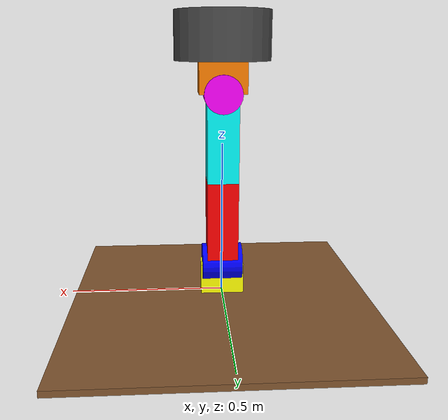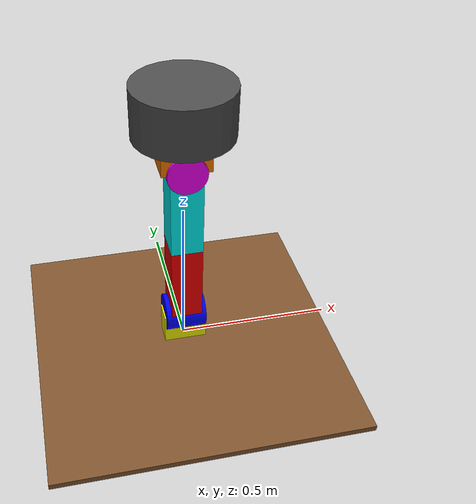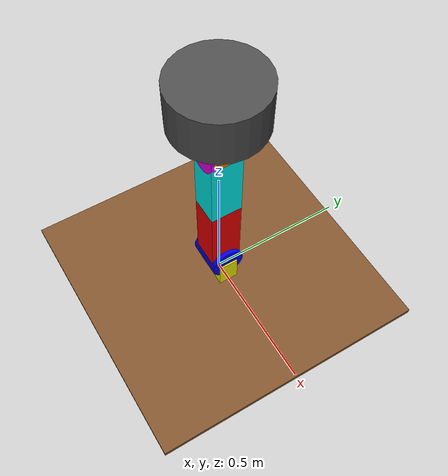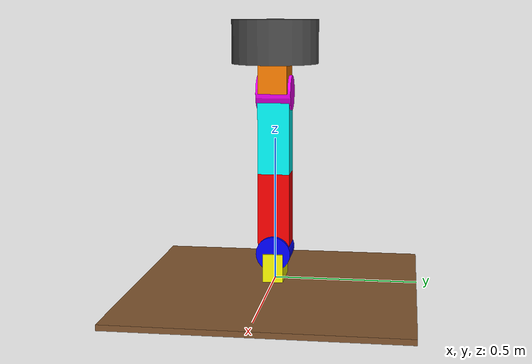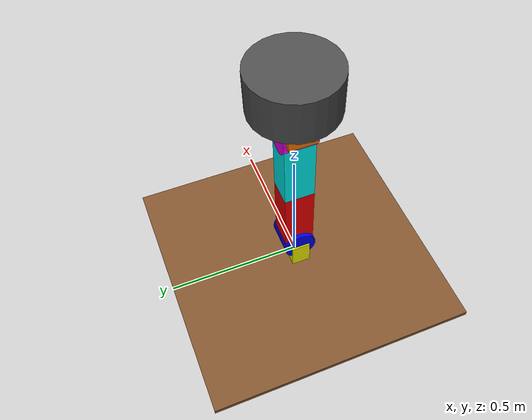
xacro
<?xml version="1.0"?>

<robot name="6dof_huboq" xmlns:xacro="http://ros.org/wiki/xacro">

  <!-- Include materials -->

    <material name="Black">
        <color rgba="0.0 0.0 0.0 1.0"/>
    </material>

    <material name="Red">
        <color rgba="0.8 0.0 0.0 1.0"/>
    </material>

    <material name="White">
        <color rgba="1.0 1.0 1.0 1.0"/>
    </material>

  <xacro:property name="deg_to_rad" value="0.01745329251994329577"/>

  <!-- Folder Setting -->
  <!-- small stl:huboq_mani_stl-small, original stl:huboq_mani_stl -->
  <xacro:property name="stl_folder" value="huboq_mani_stl-small"/>

  <!-- Constants -->
  <xacro:property name="M_SCALE" value="0.001 0.001 0.001"/>
  <xacro:property name="M_PI" value="3.14159"/>

  <!-- Link Properties -->
  <xacro:property name="base_link_length" value="0.14" />
  <xacro:property name="base_link_width" value="0.07" />
  <xacro:property name="base_link_height" value="0.1" />

	<xacro:property name="HR_link_length" value="0.13" />
	<xacro:property name="HR_link_radius" value="0.06" />

	<xacro:property name="HP_link_length" value="0.1" />
	<xacro:property name="HP_link_width" value="0.11" />
  <xacro:property name="HP_link_height" value="0.28" />

	<xacro:property name="Knee_link_length" value="0.1" />
	<xacro:property name="Knee_link_width" value="0.11" />
  <xacro:property name="Knee_link_height" value="0.28" />

  <xacro:property name="AP_link_length" value="0.12" />
	<xacro:property name="AP_link_radius" value="0.06" />

	<xacro:property name="AR_link_length" value="0.15" />
	<xacro:property name="AR_link_width" value="0.10" />
  <xacro:property name="AR_link_height" value="0.175" />

  <xacro:property name="AY_link_length" value="0.15" />
	<xacro:property name="AY_link_radius" value="0.15" />

  <!-- Inertia Properties -->
	<xacro:macro name="inertial_matrix" params="mass">
               <inertial>
                       <mass value="${mass}" />
                       <inertia ixx="0.5" ixy="0.0" ixz="0.0"
                                iyy="0.5" iyz="0.0"
                                izz="0.5" />
               </inertial>
	</xacro:macro>

   <xacro:macro name="transmission_block" params="joint_name">
	  <transmission name="tran1">
	    <type>transmission_interface/SimpleTransmission</type>
	    <joint name="${joint_name}">
	      <hardwareInterface>hardware_interface/PositionJointInterface</hardwareInterface>
	    </joint>
	    <actuator name="motor1">
	      <hardwareInterface>hardware_interface/PositionJointInterface</hardwareInterface>
	      <mechanicalReduction>1</mechanicalReduction>
	    </actuator>
	  </transmission>
   </xacro:macro>

<!-- BOTTOM FIXED LINK
This link is the base of the arm in which arm is placed
-->

  <joint name="bottom_joint" type="fixed">
    <origin xyz="0 0 0" rpy="0 0 0" />
    <parent link="base_link"/>
    <child link="bottom_link"/>
  </joint>

  <link name="bottom_link">
    <visual>
      <origin xyz=" 0 0 -0.04"  rpy="0 0 0"/>
      <geometry>
	       <box size="1 1 0.02" />
      </geometry>
      <material name="Brown" />
    </visual>

    <collision>
      <origin xyz=" 0 0 -0.04"  rpy="0 0 0"/>
      <geometry>
	       <box size="1 1 0.02" />
      </geometry>
      </collision>>
  </link>

  <gazebo reference="bottom_link">
    <material>Gazebo/White</material>
  </gazebo>

  <link name="base_link">
    <visual>
      <geometry>
	    <box size="${base_link_length} ${base_link_width} ${base_link_height}"/>
      </geometry>
      <origin rpy="0 0 0" xyz="0 0 ${base_link_height/2}"/>
      <material name="yellow">
        <color rgba="1 1 0 1"/>
      </material>
    </visual>

    <collision>
      <geometry>
	    <box size="${base_link_length} ${base_link_width} ${base_link_height}"/>
      </geometry>
      <origin rpy="0 0 0" xyz="0 0 ${base_link_height/2}"/>
    </collision>

	  <xacro:inertial_matrix mass="1"/>
  </link>

  <joint name="HR_joint" type="revolute">
    <parent link="base_link"/>
    <child link="HR_link"/>
    <origin xyz="0 0 ${base_link_height}"/>
    <axis xyz="1 0 0" />
    <limit effort="300" velocity="0.1" lower="${-40*deg_to_rad}" upper="${40*deg_to_rad}"/>
    <dynamics damping="50" friction="1"/>
  </joint>

  <link name="HR_link">
    <visual>
      <geometry>
	      <cylinder length="${HR_link_length}" radius="${HR_link_radius}"/>
     </geometry>
        <origin rpy="0 ${90.*M_PI/180.} 0" xyz="0 0 0"/>
      <material name="blue">
        <color rgba="0 0 1 1"/>
      </material>
    </visual>
    <collision>
      <geometry>
	      <cylinder length="${HR_link_length}" radius="${HR_link_radius}"/>
      </geometry>
      <origin rpy="0 ${90.*M_PI/180.} 0" xyz="0 0 0"/>
    </collision>
	  <xacro:inertial_matrix mass="1"/>
  </link>

  <joint name="HP_joint" type="revolute">
    <parent link="HR_link"/>
    <child link="HP_link"/>
    <origin xyz="0 0 0"/>
    <axis xyz="0 1 0" />
    <limit effort="300" velocity="0.1" lower="${-80*deg_to_rad}" upper="${80*deg_to_rad}"/>
    <dynamics damping="50" friction="1"/>
  </joint>

  <link name="HP_link">
    <visual>
      <geometry>
        <box size="${HP_link_length} ${HP_link_width} ${HP_link_height}"/>
      </geometry>
        <origin rpy="0 0 0" xyz="0 0 ${HP_link_height/2}"/>
      <material name="red">
        <color rgba="1 0 0 1"/>
      </material>
    </visual>
    <collision>
      <geometry>
	      <box size="${HP_link_length} ${HP_link_width} ${HP_link_height}"/>
      </geometry>
      <origin rpy="0 0 0" xyz="0 0 ${HP_link_height/2}"/>
    </collision>
  	<xacro:inertial_matrix mass="1"/>
  </link>

  <joint name="Knee_joint" type="revolute">
    <parent link="HP_link"/>
    <child link="Knee_link"/>
    <origin xyz="0 0 ${HP_link_height}"/>
    <axis xyz="0 1 0" />
    <limit effort="300" velocity="0.1" lower="${-160*deg_to_rad}" upper="${80*deg_to_rad}"/>
    <dynamics damping="50" friction="1"/>
  </joint>

  <link name="Knee_link">
    <visual>
      <geometry>
        <box size="${Knee_link_length} ${Knee_link_width} ${Knee_link_height}"/>
      </geometry>
        <origin rpy="0 0 0" xyz="0 0 ${Knee_link_height/2}"/>
      <material name="cyon">
        <color rgba="0 1 1 1"/>
      </material>
    </visual>
    <collision>
      <geometry>
	      <box size="${Knee_link_length} ${Knee_link_width} ${Knee_link_height}"/>
      </geometry>
      <origin rpy="0 0 0" xyz="0 0 ${Knee_link_height/2}"/>
    </collision>
  	<xacro:inertial_matrix mass="1"/>
  </link>

  <joint name="AP_joint" type="revolute">
    <parent link="Knee_link"/>
    <child link="AP_link"/>
    <origin xyz="0 0 ${Knee_link_height}"/>
    <axis xyz="0 1 0" />
    <limit effort="300" velocity="0.1" lower="${-90*deg_to_rad}" upper="${90*deg_to_rad}"/>
    <dynamics damping="50" friction="1"/>
  </joint>

  <link name="AP_link">
    <visual>
      <geometry>
	      <cylinder length="${AP_link_length}" radius="${AP_link_radius}"/>
      </geometry>
        <origin rpy="${90.*M_PI/180.} 0 0" xyz="0 0 0"/>
      <material name="Magenta">
        <color rgba="1 0 1 1"/>
      </material>
    </visual>
    <collision>
      <geometry>
	      <cylinder length="${AP_link_length}" radius="${AP_link_radius}"/>
      </geometry>
      <origin rpy="${90.*M_PI/180.} 0 0" xyz="0 0 0"/>
    </collision>
	  <xacro:inertial_matrix mass="1"/>
  </link>

  <joint name="AR_joint" type="revolute">
    <parent link="AP_link"/>
    <child link="AR_link"/>
    <origin xyz="0 0 0"/>
    <axis xyz="1 0 0" />
    <limit effort="300" velocity="0.1" lower="${-80*deg_to_rad}" upper="${80*deg_to_rad}"/>
    <dynamics damping="50" friction="1"/>
  </joint>

  <link name="AR_link">
    <visual>
      <geometry>
        <box size="${AR_link_length} ${AR_link_width} ${AR_link_height}"/>
      </geometry>
        <origin rpy="0 0 0" xyz="0 0 ${AR_link_height/2}"/>
      <material name="orange">
        <color rgba="1 0.5 0 1"/>
      </material>
    </visual>
    <collision>
      <geometry>
	      <box size="${AR_link_length} ${AR_link_width} ${AR_link_height}"/>
      </geometry>
      <origin rpy="0 0 0" xyz="0 0 ${AR_link_height/2}"/>
    </collision>
  	<xacro:inertial_matrix mass="1"/>
  </link>

  <joint name="AY_joint" type="revolute">
    <parent link="AR_link"/>
    <child link="AY_link"/>
    <origin xyz="0 0 ${AR_link_height}"/>
    <axis xyz="0 0 1" />
    <limit effort="300" velocity="0.1" lower="-3.14" upper="3.14"/>
    <dynamics damping="50" friction="1"/>
  </joint>

  <link name="AY_link">
    <visual>
      <geometry>
	      <cylinder length="${AY_link_length}" radius="${AY_link_radius}"/>
      </geometry>
        <origin rpy="0 0 0" xyz="0 0 0"/>
      <material name="Gray">
        <color rgba="0.3 0.3 0.3 1"/>
      </material>
    </visual>
    <collision>
      <geometry>
	      <cylinder length="${AY_link_length}" radius="${AY_link_radius}"/>
      </geometry>
      <origin rpy="0 0 0" xyz="0 0 0"/>
    </collision>
	  <xacro:inertial_matrix mass="1"/>
  </link>

  <!-- Transmissions for ROS Control -->

   <xacro:transmission_block joint_name="HR_joint"/>
   <xacro:transmission_block joint_name="HP_joint"/>
   <xacro:transmission_block joint_name="Knee_joint"/>
   <xacro:transmission_block joint_name="AP_joint"/>
   <xacro:transmission_block joint_name="AR_joint"/>
   <xacro:transmission_block joint_name="AY_joint"/>

 <!-- ros_control plugin -->
  <gazebo>
    <plugin name="gazebo_ros_control" filename="libgazebo_ros_control.so">
      <robotNamespace>/6dof_huboq</robotNamespace>
    </plugin>
  </gazebo>

</robot>
